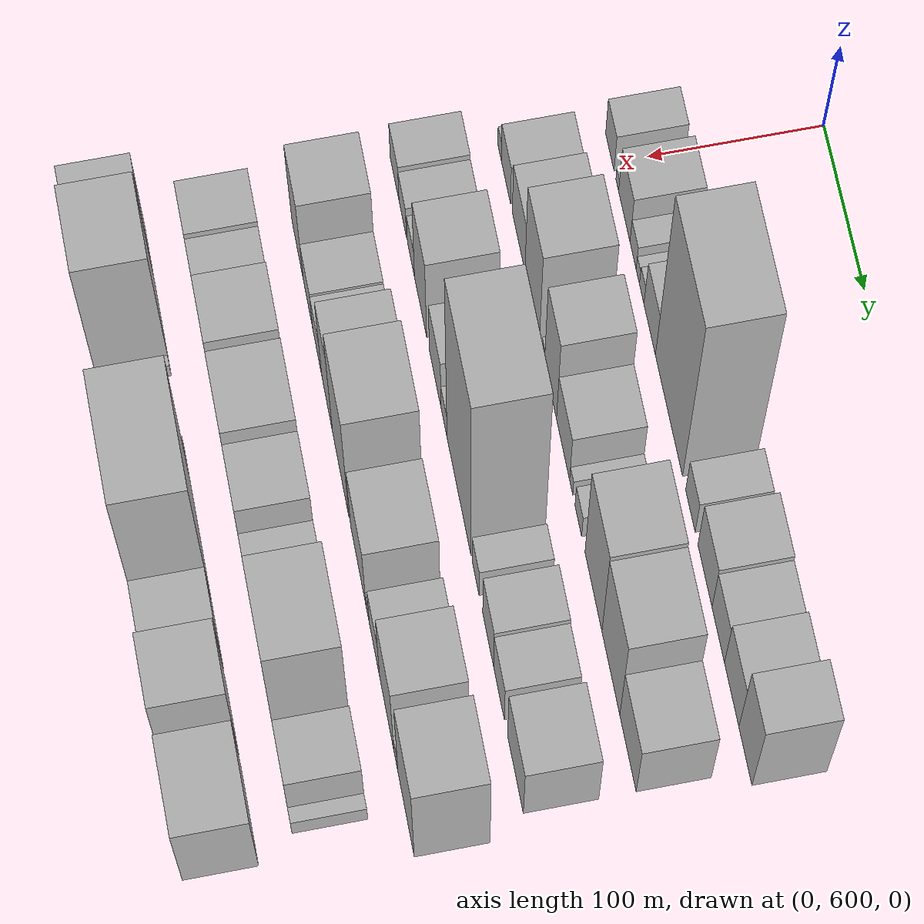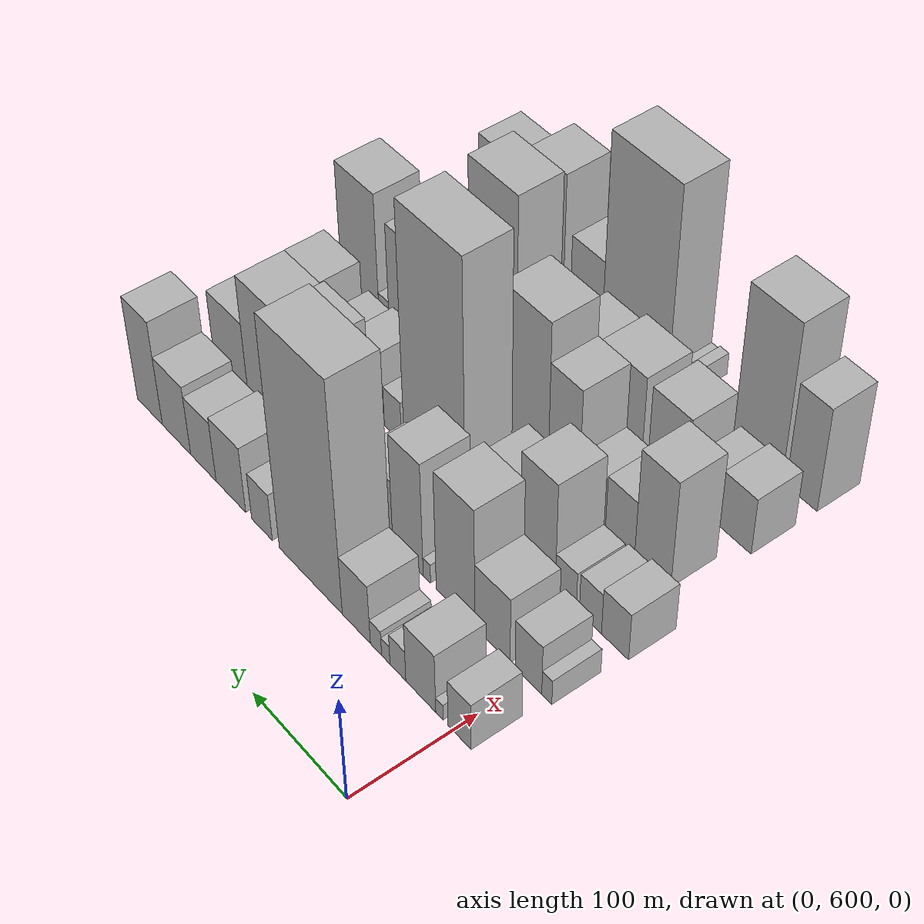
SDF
<sdf version="1.6">
 <world name="default">
  <model name="building_45">
   <static>1</static>
   <pose>100.0000 593.1495 0 0.000000 0.000000 0.000000</pose>
   <link name="link">
    <pose>0 0 22.50 0 0 0</pose>
    <collision name="collision"><geometry><box><size>40.0000 23.0561 45.0000</size></box></geometry></collision>
    <visual name="visual">
     <cast_shadows>0</cast_shadows>
     <geometry><box><size>40.0000 23.0561 45.0000</size></box></geometry>
     <material>
      <script>
       <uri>model://HANNAS_wall/materials/scripts</uri>
       <uri>model://HANNAS_wall/materials/textures</uri>
       <name>vrc/HANNAS_wall</name>
      </script>
     </material>
    </visual>
   </link>
  </model>
  <model name="building_46">
   <static>1</static>
   <pose>100.0000 613.3824 0 0.000000 0.000000 0.000000</pose>
   <link name="link">
    <pose>0 0 7.50 0 0 0</pose>
    <collision name="collision"><geometry><box><size>40.0000 7.4097 15.0000</size></box></geometry></collision>
    <visual name="visual">
     <cast_shadows>0</cast_shadows>
     <geometry><box><size>40.0000 7.4097 15.0000</size></box></geometry>
     <material>
      <script>
       <uri>model://HANNAS_wall/materials/scripts</uri>
       <uri>model://HANNAS_wall/materials/textures</uri>
       <name>vrc/HANNAS_wall</name>
      </script>
     </material>
    </visual>
   </link>
  </model>
  <model name="building_47">
   <static>1</static>
   <pose>100.0000 632.5003 0 0.000000 0.000000 0.000000</pose>
   <link name="link">
    <pose>0 0 28.50 0 0 0</pose>
    <collision name="collision"><geometry><box><size>40.0000 30.8263 57.0000</size></box></geometry></collision>
    <visual name="visual">
     <cast_shadows>0</cast_shadows>
     <geometry><box><size>40.0000 30.8263 57.0000</size></box></geometry>
     <material>
      <script>
       <uri>model://HANNAS_wall/materials/scripts</uri>
       <uri>model://HANNAS_wall/materials/textures</uri>
       <name>vrc/HANNAS_wall</name>
      </script>
     </material>
    </visual>
   </link>
  </model>
  <model name="building_48">
   <static>1</static>
   <pose>100.0000 656.2029 0 0.000000 0.000000 0.000000</pose>
   <link name="link">
    <pose>0 0 15.00 0 0 0</pose>
    <collision name="collision"><geometry><box><size>40.0000 16.5787 30.0000</size></box></geometry></collision>
    <visual name="visual">
     <cast_shadows>0</cast_shadows>
     <geometry><box><size>40.0000 16.5787 30.0000</size></box></geometry>
     <material>
      <script>
       <uri>model://HANNAS_wall/materials/scripts</uri>
       <uri>model://HANNAS_wall/materials/textures</uri>
       <name>vrc/HANNAS_wall</name>
      </script>
     </material>
    </visual>
   </link>
  </model>
  <model name="building_49">
   <static>1</static>
   <pose>100.0000 668.9546 0 0.000000 0.000000 0.000000</pose>
   <link name="link">
    <pose>0 0 9.00 0 0 0</pose>
    <collision name="collision"><geometry><box><size>40.0000 8.9249 18.0000</size></box></geometry></collision>
    <visual name="visual">
     <cast_shadows>0</cast_shadows>
     <geometry><box><size>40.0000 8.9249 18.0000</size></box></geometry>
     <material>
      <script>
       <uri>model://HANNAS_wall/materials/scripts</uri>
       <uri>model://HANNAS_wall/materials/textures</uri>
       <name>vrc/HANNAS_wall</name>
      </script>
     </material>
    </visual>
   </link>
  </model>
  <model name="building_50">
   <static>1</static>
   <pose>100.0000 679.3820 0 0.000000 0.000000 0.000000</pose>
   <link name="link">
    <pose>0 0 12.00 0 0 0</pose>
    <collision name="collision"><geometry><box><size>40.0000 11.9298 24.0000</size></box></geometry></collision>
    <visual name="visual">
     <cast_shadows>0</cast_shadows>
     <geometry><box><size>40.0000 11.9298 24.0000</size></box></geometry>
     <material>
      <script>
       <uri>model://HANNAS_wall/materials/scripts</uri>
       <uri>model://HANNAS_wall/materials/textures</uri>
       <name>vrc/HANNAS_wall</name>
      </script>
     </material>
    </visual>
   </link>
  </model>
  <model name="building_51">
   <static>1</static>
   <pose>100.0000 700.5636 0 0.000000 0.000000 0.000000</pose>
   <link name="link">
    <pose>0 0 28.50 0 0 0</pose>
    <collision name="collision"><geometry><box><size>40.0000 30.4335 57.0000</size></box></geometry></collision>
    <visual name="visual">
     <cast_shadows>0</cast_shadows>
     <geometry><box><size>40.0000 30.4335 57.0000</size></box></geometry>
     <material>
      <script>
       <uri>model://HANNAS_wall/materials/scripts</uri>
       <uri>model://HANNAS_wall/materials/textures</uri>
       <name>vrc/HANNAS_wall</name>
      </script>
     </material>
    </visual>
   </link>
  </model>
  <model name="building_52">
   <static>1</static>
   <pose>100.0000 751.2655 0 0.000000 0.000000 0.000000</pose>
   <link name="link">
    <pose>0 0 108.00 0 0 0</pose>
    <collision name="collision"><geometry><box><size>40.0000 70.9704 216.0000</size></box></geometry></collision>
    <visual name="visual">
     <cast_shadows>0</cast_shadows>
     <geometry><box><size>40.0000 70.9704 216.0000</size></box></geometry>
     <material>
      <script>
       <uri>model://HANNAS_wall/materials/scripts</uri>
       <uri>model://HANNAS_wall/materials/textures</uri>
       <name>vrc/HANNAS_wall</name>
      </script>
     </material>
    </visual>
   </link>
  </model>
  <model name="building_53">
   <static>1</static>
   <pose>100.0000 806.9127 0 0.000000 0.000000 0.000000</pose>
   <link name="link">
    <pose>0 0 22.50 0 0 0</pose>
    <collision name="collision"><geometry><box><size>40.0000 24.3240 45.0000</size></box></geometry></collision>
    <visual name="visual">
     <cast_shadows>0</cast_shadows>
     <geometry><box><size>40.0000 24.3240 45.0000</size></box></geometry>
     <material>
      <script>
       <uri>model://HANNAS_wall/materials/scripts</uri>
       <uri>model://HANNAS_wall/materials/textures</uri>
       <name>vrc/HANNAS_wall</name>
      </script>
     </material>
    </visual>
   </link>
  </model>
  <model name="building_54">
   <static>1</static>
   <pose>100.0000 843.8840 0 0.000000 0.000000 0.000000</pose>
   <link name="link">
    <pose>0 0 31.50 0 0 0</pose>
    <collision name="collision"><geometry><box><size>40.0000 35.6187 63.0000</size></box></geometry></collision>
    <visual name="visual">
     <cast_shadows>0</cast_shadows>
     <geometry><box><size>40.0000 35.6187 63.0000</size></box></geometry>
     <material>
      <script>
       <uri>model://HANNAS_wall/materials/scripts</uri>
       <uri>model://HANNAS_wall/materials/textures</uri>
       <name>vrc/HANNAS_wall</name>
      </script>
     </material>
    </visual>
   </link>
  </model>
  <model name="building_55">
   <static>1</static>
   <pose>100.0000 877.3269 0 0.000000 0.000000 0.000000</pose>
   <link name="link">
    <pose>0 0 28.50 0 0 0</pose>
    <collision name="collision"><geometry><box><size>40.0000 31.2671 57.0000</size></box></geometry></collision>
    <visual name="visual">
     <cast_shadows>0</cast_shadows>
     <geometry><box><size>40.0000 31.2671 57.0000</size></box></geometry>
     <material>
      <script>
       <uri>model://HANNAS_wall/materials/scripts</uri>
       <uri>model://HANNAS_wall/materials/textures</uri>
       <name>vrc/HANNAS_wall</name>
      </script>
     </material>
    </visual>
   </link>
  </model>
  <model name="building_56">
   <static>1</static>
   <pose>100.0000 910.8235 0 0.000000 0.000000 0.000000</pose>
   <link name="link">
    <pose>0 0 33.00 0 0 0</pose>
    <collision name="collision"><geometry><box><size>40.0000 35.7262 66.0000</size></box></geometry></collision>
    <visual name="visual">
     <cast_shadows>0</cast_shadows>
     <geometry><box><size>40.0000 35.7262 66.0000</size></box></geometry>
     <material>
      <script>
       <uri>model://HANNAS_wall/materials/scripts</uri>
       <uri>model://HANNAS_wall/materials/textures</uri>
       <name>vrc/HANNAS_wall</name>
      </script>
     </material>
    </visual>
   </link>
  </model>
  <model name="building_57">
   <static>1</static>
   <pose>100.0000 944.7487 0 0.000000 0.000000 0.000000</pose>
   <link name="link">
    <pose>0 0 49.50 0 0 0</pose>
    <collision name="collision"><geometry><box><size>40.0000 32.1241 99.0000</size></box></geometry></collision>
    <visual name="visual">
     <cast_shadows>0</cast_shadows>
     <geometry><box><size>40.0000 32.1241 99.0000</size></box></geometry>
     <material>
      <script>
       <uri>model://HANNAS_wall/materials/scripts</uri>
       <uri>model://HANNAS_wall/materials/textures</uri>
       <name>vrc/HANNAS_wall</name>
      </script>
     </material>
    </visual>
   </link>
  </model>
  <model name="building_104">
   <static>1</static>
   <pose>160.0000 581.8276 0 0.000000 0.000000 0.000000</pose>
   <link name="link">
    <pose>0 0 12.00 0 0 0</pose>
    <collision name="collision"><geometry><box><size>40.0000 9.8378 24.0000</size></box></geometry></collision>
    <visual name="visual">
     <cast_shadows>0</cast_shadows>
     <geometry><box><size>40.0000 9.8378 24.0000</size></box></geometry>
     <material>
      <script>
       <uri>model://HANNAS_wall/materials/scripts</uri>
       <uri>model://HANNAS_wall/materials/textures</uri>
       <name>vrc/HANNAS_wall</name>
      </script>
     </material>
    </visual>
   </link>
  </model>
  <model name="building_105">
   <static>1</static>
   <pose>160.0000 599.9841 0 0.000000 0.000000 0.000000</pose>
   <link name="link">
    <pose>0 0 24.00 0 0 0</pose>
    <collision name="collision"><geometry><box><size>40.0000 26.4752 48.0000</size></box></geometry></collision>
    <visual name="visual">
     <cast_shadows>0</cast_shadows>
     <geometry><box><size>40.0000 26.4752 48.0000</size></box></geometry>
     <material>
      <script>
       <uri>model://HANNAS_wall/materials/scripts</uri>
       <uri>model://HANNAS_wall/materials/textures</uri>
       <name>vrc/HANNAS_wall</name>
      </script>
     </material>
    </visual>
   </link>
  </model>
  <model name="building_106">
   <static>1</static>
   <pose>160.0000 636.1935 0 0.000000 0.000000 0.000000</pose>
   <link name="link">
    <pose>0 0 31.50 0 0 0</pose>
    <collision name="collision"><geometry><box><size>40.0000 35.9436 63.0000</size></box></geometry></collision>
    <visual name="visual">
     <cast_shadows>0</cast_shadows>
     <geometry><box><size>40.0000 35.9436 63.0000</size></box></geometry>
     <material>
      <script>
       <uri>model://HANNAS_wall/materials/scripts</uri>
       <uri>model://HANNAS_wall/materials/textures</uri>
       <name>vrc/HANNAS_wall</name>
      </script>
     </material>
    </visual>
   </link>
  </model>
  <model name="building_107">
   <static>1</static>
   <pose>160.0000 674.4853 0 0.000000 0.000000 0.000000</pose>
   <link name="link">
    <pose>0 0 57.00 0 0 0</pose>
    <collision name="collision"><geometry><box><size>40.0000 40.6400 114.0000</size></box></geometry></collision>
    <visual name="visual">
     <cast_shadows>0</cast_shadows>
     <geometry><box><size>40.0000 40.6400 114.0000</size></box></geometry>
     <material>
      <script>
       <uri>model://HANNAS_wall/materials/scripts</uri>
       <uri>model://HANNAS_wall/materials/textures</uri>
       <name>vrc/HANNAS_wall</name>
      </script>
     </material>
    </visual>
   </link>
  </model>
  <model name="building_108">
   <static>1</static>
   <pose>160.0000 704.7735 0 0.000000 0.000000 0.000000</pose>
   <link name="link">
    <pose>0 0 9.00 0 0 0</pose>
    <collision name="collision"><geometry><box><size>40.0000 7.9365 18.0000</size></box></geometry></collision>
    <visual name="visual">
     <cast_shadows>0</cast_shadows>
     <geometry><box><size>40.0000 7.9365 18.0000</size></box></geometry>
     <material>
      <script>
       <uri>model://HANNAS_wall/materials/scripts</uri>
       <uri>model://HANNAS_wall/materials/textures</uri>
       <name>vrc/HANNAS_wall</name>
      </script>
     </material>
    </visual>
   </link>
  </model>
  <model name="building_109">
   <static>1</static>
   <pose>160.0000 725.2594 0 0.000000 0.000000 0.000000</pose>
   <link name="link">
    <pose>0 0 54.00 0 0 0</pose>
    <collision name="collision"><geometry><box><size>40.0000 33.0354 108.0000</size></box></geometry></collision>
    <visual name="visual">
     <cast_shadows>0</cast_shadows>
     <geometry><box><size>40.0000 33.0354 108.0000</size></box></geometry>
     <material>
      <script>
       <uri>model://HANNAS_wall/materials/scripts</uri>
       <uri>model://HANNAS_wall/materials/textures</uri>
       <name>vrc/HANNAS_wall</name>
      </script>
     </material>
    </visual>
   </link>
  </model>
  <model name="building_110">
   <static>1</static>
   <pose>160.0000 759.6348 0 0.000000 0.000000 0.000000</pose>
   <link name="link">
    <pose>0 0 31.50 0 0 0</pose>
    <collision name="collision"><geometry><box><size>40.0000 35.7154 63.0000</size></box></geometry></collision>
    <visual name="visual">
     <cast_shadows>0</cast_shadows>
     <geometry><box><size>40.0000 35.7154 63.0000</size></box></geometry>
     <material>
      <script>
       <uri>model://HANNAS_wall/materials/scripts</uri>
       <uri>model://HANNAS_wall/materials/textures</uri>
       <name>vrc/HANNAS_wall</name>
      </script>
     </material>
    </visual>
   </link>
  </model>
  <model name="building_111">
   <static>1</static>
   <pose>160.0000 781.7776 0 0.000000 0.000000 0.000000</pose>
   <link name="link">
    <pose>0 0 10.50 0 0 0</pose>
    <collision name="collision"><geometry><box><size>40.0000 8.5702 21.0000</size></box></geometry></collision>
    <visual name="visual">
     <cast_shadows>0</cast_shadows>
     <geometry><box><size>40.0000 8.5702 21.0000</size></box></geometry>
     <material>
      <script>
       <uri>model://HANNAS_wall/materials/scripts</uri>
       <uri>model://HANNAS_wall/materials/textures</uri>
       <name>vrc/HANNAS_wall</name>
      </script>
     </material>
    </visual>
   </link>
  </model>
  <model name="building_112">
   <static>1</static>
   <pose>160.0000 800.9987 0 0.000000 0.000000 0.000000</pose>
   <link name="link">
    <pose>0 0 15.00 0 0 0</pose>
    <collision name="collision"><geometry><box><size>40.0000 17.8720 30.0000</size></box></geometry></collision>
    <visual name="visual">
     <cast_shadows>0</cast_shadows>
     <geometry><box><size>40.0000 17.8720 30.0000</size></box></geometry>
     <material>
      <script>
       <uri>model://HANNAS_wall/materials/scripts</uri>
       <uri>model://HANNAS_wall/materials/textures</uri>
       <name>vrc/HANNAS_wall</name>
      </script>
     </material>
    </visual>
   </link>
  </model>
  <model name="building_113">
   <static>1</static>
   <pose>160.0000 841.4218 0 0.000000 0.000000 0.000000</pose>
   <link name="link">
    <pose>0 0 63.00 0 0 0</pose>
    <collision name="collision"><geometry><box><size>40.0000 44.9743 126.0000</size></box></geometry></collision>
    <visual name="visual">
     <cast_shadows>0</cast_shadows>
     <geometry><box><size>40.0000 44.9743 126.0000</size></box></geometry>
     <material>
      <script>
       <uri>model://HANNAS_wall/materials/scripts</uri>
       <uri>model://HANNAS_wall/materials/textures</uri>
       <name>vrc/HANNAS_wall</name>
      </script>
     </material>
    </visual>
   </link>
  </model>
  <model name="building_114">
   <static>1</static>
   <pose>160.0000 887.2286 0 0.000000 0.000000 0.000000</pose>
   <link name="link">
    <pose>0 0 60.00 0 0 0</pose>
    <collision name="collision"><geometry><box><size>40.0000 46.6394 120.0000</size></box></geometry></collision>
    <visual name="visual">
     <cast_shadows>0</cast_shadows>
     <geometry><box><size>40.0000 46.6394 120.0000</size></box></geometry>
     <material>
      <script>
       <uri>model://HANNAS_wall/materials/scripts</uri>
       <uri>model://HANNAS_wall/materials/textures</uri>
       <name>vrc/HANNAS_wall</name>
      </script>
     </material>
    </visual>
   </link>
  </model>
  <model name="building_115">
   <static>1</static>
   <pose>160.0000 931.6142 0 0.000000 0.000000 0.000000</pose>
   <link name="link">
    <pose>0 0 37.50 0 0 0</pose>
    <collision name="collision"><geometry><box><size>40.0000 42.1318 75.0000</size></box></geometry></collision>
    <visual name="visual">
     <cast_shadows>0</cast_shadows>
     <geometry><box><size>40.0000 42.1318 75.0000</size></box></geometry>
     <material>
      <script>
       <uri>model://HANNAS_wall/materials/scripts</uri>
       <uri>model://HANNAS_wall/materials/textures</uri>
       <name>vrc/HANNAS_wall</name>
      </script>
     </material>
    </visual>
   </link>
  </model>
  <model name="building_160">
   <static>1</static>
   <pose>220.0000 586.6450 0 0.000000 0.000000 0.000000</pose>
   <link name="link">
    <pose>0 0 22.50 0 0 0</pose>
    <collision name="collision"><geometry><box><size>40.0000 26.4639 45.0000</size></box></geometry></collision>
    <visual name="visual">
     <cast_shadows>0</cast_shadows>
     <geometry><box><size>40.0000 26.4639 45.0000</size></box></geometry>
     <material>
      <script>
       <uri>model://HANNAS_wall/materials/scripts</uri>
       <uri>model://HANNAS_wall/materials/textures</uri>
       <name>vrc/HANNAS_wall</name>
      </script>
     </material>
    </visual>
   </link>
  </model>
  <model name="building_161">
   <static>1</static>
   <pose>220.0000 610.8806 0 0.000000 0.000000 0.000000</pose>
   <link name="link">
    <pose>0 0 19.50 0 0 0</pose>
    <collision name="collision"><geometry><box><size>40.0000 22.0073 39.0000</size></box></geometry></collision>
    <visual name="visual">
     <cast_shadows>0</cast_shadows>
     <geometry><box><size>40.0000 22.0073 39.0000</size></box></geometry>
     <material>
      <script>
       <uri>model://HANNAS_wall/materials/scripts</uri>
       <uri>model://HANNAS_wall/materials/textures</uri>
       <name>vrc/HANNAS_wall</name>
      </script>
     </material>
    </visual>
   </link>
  </model>
  <model name="building_162">
   <static>1</static>
   <pose>220.0000 635.4902 0 0.000000 0.000000 0.000000</pose>
   <link name="link">
    <pose>0 0 18.00 0 0 0</pose>
    <collision name="collision"><geometry><box><size>40.0000 21.2120 36.0000</size></box></geometry></collision>
    <visual name="visual">
     <cast_shadows>0</cast_shadows>
     <geometry><box><size>40.0000 21.2120 36.0000</size></box></geometry>
     <material>
      <script>
       <uri>model://HANNAS_wall/materials/scripts</uri>
       <uri>model://HANNAS_wall/materials/textures</uri>
       <name>vrc/HANNAS_wall</name>
      </script>
     </material>
    </visual>
   </link>
  </model>
  <model name="building_163">
   <static>1</static>
   <pose>220.0000 664.1175 0 0.000000 0.000000 0.000000</pose>
   <link name="link">
    <pose>0 0 51.00 0 0 0</pose>
    <collision name="collision"><geometry><box><size>40.0000 36.0426 102.0000</size></box></geometry></collision>
    <visual name="visual">
     <cast_shadows>0</cast_shadows>
     <geometry><box><size>40.0000 36.0426 102.0000</size></box></geometry>
     <material>
      <script>
       <uri>model://HANNAS_wall/materials/scripts</uri>
       <uri>model://HANNAS_wall/materials/textures</uri>
       <name>vrc/HANNAS_wall</name>
      </script>
     </material>
    </visual>
   </link>
  </model>
  <model name="building_164">
   <static>1</static>
   <pose>220.0000 707.0521 0 0.000000 0.000000 0.000000</pose>
   <link name="link">
    <pose>0 0 33.00 0 0 0</pose>
    <collision name="collision"><geometry><box><size>40.0000 33.8267 66.0000</size></box></geometry></collision>
    <visual name="visual">
     <cast_shadows>0</cast_shadows>
     <geometry><box><size>40.0000 33.8267 66.0000</size></box></geometry>
     <material>
      <script>
       <uri>model://HANNAS_wall/materials/scripts</uri>
       <uri>model://HANNAS_wall/materials/textures</uri>
       <name>vrc/HANNAS_wall</name>
      </script>
     </material>
    </visual>
   </link>
  </model>
  <model name="building_165">
   <static>1</static>
   <pose>220.0000 732.4804 0 0.000000 0.000000 0.000000</pose>
   <link name="link">
    <pose>0 0 16.50 0 0 0</pose>
    <collision name="collision"><geometry><box><size>40.0000 17.0299 33.0000</size></box></geometry></collision>
    <visual name="visual">
     <cast_shadows>0</cast_shadows>
     <geometry><box><size>40.0000 17.0299 33.0000</size></box></geometry>
     <material>
      <script>
       <uri>model://HANNAS_wall/materials/scripts</uri>
       <uri>model://HANNAS_wall/materials/textures</uri>
       <name>vrc/HANNAS_wall</name>
      </script>
     </material>
    </visual>
   </link>
  </model>
  <model name="building_166">
   <static>1</static>
   <pose>220.0000 775.0628 0 0.000000 0.000000 0.000000</pose>
   <link name="link">
    <pose>0 0 112.50 0 0 0</pose>
    <collision name="collision"><geometry><box><size>40.0000 68.1348 225.0000</size></box></geometry></collision>
    <visual name="visual">
     <cast_shadows>0</cast_shadows>
     <geometry><box><size>40.0000 68.1348 225.0000</size></box></geometry>
     <material>
      <script>
       <uri>model://HANNAS_wall/materials/scripts</uri>
       <uri>model://HANNAS_wall/materials/textures</uri>
       <name>vrc/HANNAS_wall</name>
      </script>
     </material>
    </visual>
   </link>
  </model>
  <model name="building_167">
   <static>1</static>
   <pose>220.0000 822.0262 0 0.000000 0.000000 0.000000</pose>
   <link name="link">
    <pose>0 0 19.50 0 0 0</pose>
    <collision name="collision"><geometry><box><size>40.0000 19.7921 39.0000</size></box></geometry></collision>
    <visual name="visual">
     <cast_shadows>0</cast_shadows>
     <geometry><box><size>40.0000 19.7921 39.0000</size></box></geometry>
     <material>
      <script>
       <uri>model://HANNAS_wall/materials/scripts</uri>
       <uri>model://HANNAS_wall/materials/textures</uri>
       <name>vrc/HANNAS_wall</name>
      </script>
     </material>
    </visual>
   </link>
  </model>
  <model name="building_168">
   <static>1</static>
   <pose>220.0000 857.0688 0 0.000000 0.000000 0.000000</pose>
   <link name="link">
    <pose>0 0 30.00 0 0 0</pose>
    <collision name="collision"><geometry><box><size>40.0000 30.2931 60.0000</size></box></geometry></collision>
    <visual name="visual">
     <cast_shadows>0</cast_shadows>
     <geometry><box><size>40.0000 30.2931 60.0000</size></box></geometry>
     <material>
      <script>
       <uri>model://HANNAS_wall/materials/scripts</uri>
       <uri>model://HANNAS_wall/materials/textures</uri>
       <name>vrc/HANNAS_wall</name>
      </script>
     </material>
    </visual>
   </link>
  </model>
  <model name="building_169">
   <static>1</static>
   <pose>220.0000 886.8657 0 0.000000 0.000000 0.000000</pose>
   <link name="link">
    <pose>0 0 27.00 0 0 0</pose>
    <collision name="collision"><geometry><box><size>40.0000 29.3008 54.0000</size></box></geometry></collision>
    <visual name="visual">
     <cast_shadows>0</cast_shadows>
     <geometry><box><size>40.0000 29.3008 54.0000</size></box></geometry>
     <material>
      <script>
       <uri>model://HANNAS_wall/materials/scripts</uri>
       <uri>model://HANNAS_wall/materials/textures</uri>
       <name>vrc/HANNAS_wall</name>
      </script>
     </material>
    </visual>
   </link>
  </model>
  <model name="building_170">
   <static>1</static>
   <pose>220.0000 931.6974 0 0.000000 0.000000 0.000000</pose>
   <link name="link">
    <pose>0 0 37.50 0 0 0</pose>
    <collision name="collision"><geometry><box><size>40.0000 42.3626 75.0000</size></box></geometry></collision>
    <visual name="visual">
     <cast_shadows>0</cast_shadows>
     <geometry><box><size>40.0000 42.3626 75.0000</size></box></geometry>
     <material>
      <script>
       <uri>model://HANNAS_wall/materials/scripts</uri>
       <uri>model://HANNAS_wall/materials/textures</uri>
       <name>vrc/HANNAS_wall</name>
      </script>
     </material>
    </visual>
   </link>
  </model>
  <model name="building_211">
   <static>1</static>
   <pose>280.0000 618.7101 0 0.000000 0.000000 0.000000</pose>
   <link name="link">
    <pose>0 0 51.00 0 0 0</pose>
    <collision name="collision"><geometry><box><size>40.0000 35.7770 102.0000</size></box></geometry></collision>
    <visual name="visual">
     <cast_shadows>0</cast_shadows>
     <geometry><box><size>40.0000 35.7770 102.0000</size></box></geometry>
     <material>
      <script>
       <uri>model://HANNAS_wall/materials/scripts</uri>
       <uri>model://HANNAS_wall/materials/textures</uri>
       <name>vrc/HANNAS_wall</name>
      </script>
     </material>
    </visual>
   </link>
  </model>
  <model name="building_212">
   <static>1</static>
   <pose>280.0000 651.3871 0 0.000000 0.000000 0.000000</pose>
   <link name="link">
    <pose>0 0 25.50 0 0 0</pose>
    <collision name="collision"><geometry><box><size>40.0000 29.5771 51.0000</size></box></geometry></collision>
    <visual name="visual">
     <cast_shadows>0</cast_shadows>
     <geometry><box><size>40.0000 29.5771 51.0000</size></box></geometry>
     <material>
      <script>
       <uri>model://HANNAS_wall/materials/scripts</uri>
       <uri>model://HANNAS_wall/materials/textures</uri>
       <name>vrc/HANNAS_wall</name>
      </script>
     </material>
    </visual>
   </link>
  </model>
  <model name="building_213">
   <static>1</static>
   <pose>280.0000 680.0208 0 0.000000 0.000000 0.000000</pose>
   <link name="link">
    <pose>0 0 24.00 0 0 0</pose>
    <collision name="collision"><geometry><box><size>40.0000 27.6902 48.0000</size></box></geometry></collision>
    <visual name="visual">
     <cast_shadows>0</cast_shadows>
     <geometry><box><size>40.0000 27.6902 48.0000</size></box></geometry>
     <material>
      <script>
       <uri>model://HANNAS_wall/materials/scripts</uri>
       <uri>model://HANNAS_wall/materials/textures</uri>
       <name>vrc/HANNAS_wall</name>
      </script>
     </material>
    </visual>
   </link>
  </model>
  <model name="building_214">
   <static>1</static>
   <pose>280.0000 710.1122 0 0.000000 0.000000 0.000000</pose>
   <link name="link">
    <pose>0 0 54.00 0 0 0</pose>
    <collision name="collision"><geometry><box><size>40.0000 32.4928 108.0000</size></box></geometry></collision>
    <visual name="visual">
     <cast_shadows>0</cast_shadows>
     <geometry><box><size>40.0000 32.4928 108.0000</size></box></geometry>
     <material>
      <script>
       <uri>model://HANNAS_wall/materials/scripts</uri>
       <uri>model://HANNAS_wall/materials/textures</uri>
       <name>vrc/HANNAS_wall</name>
      </script>
     </material>
    </visual>
   </link>
  </model>
  <model name="building_215">
   <static>1</static>
   <pose>280.0000 751.1463 0 0.000000 0.000000 0.000000</pose>
   <link name="link">
    <pose>0 0 72.00 0 0 0</pose>
    <collision name="collision"><geometry><box><size>40.0000 49.5754 144.0000</size></box></geometry></collision>
    <visual name="visual">
     <cast_shadows>0</cast_shadows>
     <geometry><box><size>40.0000 49.5754 144.0000</size></box></geometry>
     <material>
      <script>
       <uri>model://HANNAS_wall/materials/scripts</uri>
       <uri>model://HANNAS_wall/materials/textures</uri>
       <name>vrc/HANNAS_wall</name>
      </script>
     </material>
    </visual>
   </link>
  </model>
  <model name="building_216">
   <static>1</static>
   <pose>280.0000 803.6916 0 0.000000 0.000000 0.000000</pose>
   <link name="link">
    <pose>0 0 43.50 0 0 0</pose>
    <collision name="collision"><geometry><box><size>40.0000 45.5151 87.0000</size></box></geometry></collision>
    <visual name="visual">
     <cast_shadows>0</cast_shadows>
     <geometry><box><size>40.0000 45.5151 87.0000</size></box></geometry>
     <material>
      <script>
       <uri>model://HANNAS_wall/materials/scripts</uri>
       <uri>model://HANNAS_wall/materials/textures</uri>
       <name>vrc/HANNAS_wall</name>
      </script>
     </material>
    </visual>
   </link>
  </model>
  <model name="building_217">
   <static>1</static>
   <pose>280.0000 831.4680 0 0.000000 0.000000 0.000000</pose>
   <link name="link">
    <pose>0 0 12.00 0 0 0</pose>
    <collision name="collision"><geometry><box><size>40.0000 10.0376 24.0000</size></box></geometry></collision>
    <visual name="visual">
     <cast_shadows>0</cast_shadows>
     <geometry><box><size>40.0000 10.0376 24.0000</size></box></geometry>
     <material>
      <script>
       <uri>model://HANNAS_wall/materials/scripts</uri>
       <uri>model://HANNAS_wall/materials/textures</uri>
       <name>vrc/HANNAS_wall</name>
      </script>
     </material>
    </visual>
   </link>
  </model>
  <model name="building_218">
   <static>1</static>
   <pose>280.0000 851.3828 0 0.000000 0.000000 0.000000</pose>
   <link name="link">
    <pose>0 0 28.50 0 0 0</pose>
    <collision name="collision"><geometry><box><size>40.0000 29.7920 57.0000</size></box></geometry></collision>
    <visual name="visual">
     <cast_shadows>0</cast_shadows>
     <geometry><box><size>40.0000 29.7920 57.0000</size></box></geometry>
     <material>
      <script>
       <uri>model://HANNAS_wall/materials/scripts</uri>
       <uri>model://HANNAS_wall/materials/textures</uri>
       <name>vrc/HANNAS_wall</name>
      </script>
     </material>
    </visual>
   </link>
  </model>
  <model name="building_219">
   <static>1</static>
   <pose>280.0000 886.4820 0 0.000000 0.000000 0.000000</pose>
   <link name="link">
    <pose>0 0 51.00 0 0 0</pose>
    <collision name="collision"><geometry><box><size>40.0000 40.4063 102.0000</size></box></geometry></collision>
    <visual name="visual">
     <cast_shadows>0</cast_shadows>
     <geometry><box><size>40.0000 40.4063 102.0000</size></box></geometry>
     <material>
      <script>
       <uri>model://HANNAS_wall/materials/scripts</uri>
       <uri>model://HANNAS_wall/materials/textures</uri>
       <name>vrc/HANNAS_wall</name>
      </script>
     </material>
    </visual>
   </link>
  </model>
  <model name="building_220">
   <static>1</static>
   <pose>280.0000 912.8430 0 0.000000 0.000000 0.000000</pose>
   <link name="link">
    <pose>0 0 13.50 0 0 0</pose>
    <collision name="collision"><geometry><box><size>40.0000 12.3158 27.0000</size></box></geometry></collision>
    <visual name="visual">
     <cast_shadows>0</cast_shadows>
     <geometry><box><size>40.0000 12.3158 27.0000</size></box></geometry>
     <material>
      <script>
       <uri>model://HANNAS_wall/materials/scripts</uri>
       <uri>model://HANNAS_wall/materials/textures</uri>
       <name>vrc/HANNAS_wall</name>
      </script>
     </material>
    </visual>
   </link>
  </model>
  <model name="building_221">
   <static>1</static>
   <pose>280.0000 941.9724 0 0.000000 0.000000 0.000000</pose>
   <link name="link">
    <pose>0 0 60.00 0 0 0</pose>
    <collision name="collision"><geometry><box><size>40.0000 45.9430 120.0000</size></box></geometry></collision>
    <visual name="visual">
     <cast_shadows>0</cast_shadows>
     <geometry><box><size>40.0000 45.9430 120.0000</size></box></geometry>
     <material>
      <script>
       <uri>model://HANNAS_wall/materials/scripts</uri>
       <uri>model://HANNAS_wall/materials/textures</uri>
       <name>vrc/HANNAS_wall</name>
      </script>
     </material>
    </visual>
   </link>
  </model>
  <model name="building_268">
   <static>1</static>
   <pose>340.0000 604.7084 0 0.000000 0.000000 0.000000</pose>
   <link name="link">
    <pose>0 0 27.00 0 0 0</pose>
    <collision name="collision"><geometry><box><size>40.0000 31.7226 54.0000</size></box></geometry></collision>
    <visual name="visual">
     <cast_shadows>0</cast_shadows>
     <geometry><box><size>40.0000 31.7226 54.0000</size></box></geometry>
     <material>
      <script>
       <uri>model://HANNAS_wall/materials/scripts</uri>
       <uri>model://HANNAS_wall/materials/textures</uri>
       <name>vrc/HANNAS_wall</name>
      </script>
     </material>
    </visual>
   </link>
  </model>
  <model name="building_269">
   <static>1</static>
   <pose>340.0000 633.8607 0 0.000000 0.000000 0.000000</pose>
   <link name="link">
    <pose>0 0 24.00 0 0 0</pose>
    <collision name="collision"><geometry><box><size>40.0000 26.5820 48.0000</size></box></geometry></collision>
    <visual name="visual">
     <cast_shadows>0</cast_shadows>
     <geometry><box><size>40.0000 26.5820 48.0000</size></box></geometry>
     <material>
      <script>
       <uri>model://HANNAS_wall/materials/scripts</uri>
       <uri>model://HANNAS_wall/materials/textures</uri>
       <name>vrc/HANNAS_wall</name>
      </script>
     </material>
    </visual>
   </link>
  </model>
  <model name="building_270">
   <static>1</static>
   <pose>340.0000 672.6323 0 0.000000 0.000000 0.000000</pose>
   <link name="link">
    <pose>0 0 37.50 0 0 0</pose>
    <collision name="collision"><geometry><box><size>40.0000 38.9611 75.0000</size></box></geometry></collision>
    <visual name="visual">
     <cast_shadows>0</cast_shadows>
     <geometry><box><size>40.0000 38.9611 75.0000</size></box></geometry>
     <material>
      <script>
       <uri>model://HANNAS_wall/materials/scripts</uri>
       <uri>model://HANNAS_wall/materials/textures</uri>
       <name>vrc/HANNAS_wall</name>
      </script>
     </material>
    </visual>
   </link>
  </model>
  <model name="building_271">
   <static>1</static>
   <pose>340.0000 721.2803 0 0.000000 0.000000 0.000000</pose>
   <link name="link">
    <pose>0 0 39.00 0 0 0</pose>
    <collision name="collision"><geometry><box><size>40.0000 46.3348 78.0000</size></box></geometry></collision>
    <visual name="visual">
     <cast_shadows>0</cast_shadows>
     <geometry><box><size>40.0000 46.3348 78.0000</size></box></geometry>
     <material>
      <script>
       <uri>model://HANNAS_wall/materials/scripts</uri>
       <uri>model://HANNAS_wall/materials/textures</uri>
       <name>vrc/HANNAS_wall</name>
      </script>
     </material>
    </visual>
   </link>
  </model>
  <model name="building_272">
   <static>1</static>
   <pose>340.0000 766.1467 0 0.000000 0.000000 0.000000</pose>
   <link name="link">
    <pose>0 0 34.50 0 0 0</pose>
    <collision name="collision"><geometry><box><size>40.0000 37.3980 69.0000</size></box></geometry></collision>
    <visual name="visual">
     <cast_shadows>0</cast_shadows>
     <geometry><box><size>40.0000 37.3980 69.0000</size></box></geometry>
     <material>
      <script>
       <uri>model://HANNAS_wall/materials/scripts</uri>
       <uri>model://HANNAS_wall/materials/textures</uri>
       <name>vrc/HANNAS_wall</name>
      </script>
     </material>
    </visual>
   </link>
  </model>
  <model name="building_273">
   <static>1</static>
   <pose>340.0000 793.5638 0 0.000000 0.000000 0.000000</pose>
   <link name="link">
    <pose>0 0 16.50 0 0 0</pose>
    <collision name="collision"><geometry><box><size>40.0000 17.4362 33.0000</size></box></geometry></collision>
    <visual name="visual">
     <cast_shadows>0</cast_shadows>
     <geometry><box><size>40.0000 17.4362 33.0000</size></box></geometry>
     <material>
      <script>
       <uri>model://HANNAS_wall/materials/scripts</uri>
       <uri>model://HANNAS_wall/materials/textures</uri>
       <name>vrc/HANNAS_wall</name>
      </script>
     </material>
    </visual>
   </link>
  </model>
  <model name="building_274">
   <static>1</static>
   <pose>340.0000 813.7919 0 0.000000 0.000000 0.000000</pose>
   <link name="link">
    <pose>0 0 22.50 0 0 0</pose>
    <collision name="collision"><geometry><box><size>40.0000 23.0200 45.0000</size></box></geometry></collision>
    <visual name="visual">
     <cast_shadows>0</cast_shadows>
     <geometry><box><size>40.0000 23.0200 45.0000</size></box></geometry>
     <material>
      <script>
       <uri>model://HANNAS_wall/materials/scripts</uri>
       <uri>model://HANNAS_wall/materials/textures</uri>
       <name>vrc/HANNAS_wall</name>
      </script>
     </material>
    </visual>
   </link>
  </model>
  <model name="building_275">
   <static>1</static>
   <pose>340.0000 861.8853 0 0.000000 0.000000 0.000000</pose>
   <link name="link">
    <pose>0 0 72.00 0 0 0</pose>
    <collision name="collision"><geometry><box><size>40.0000 55.1668 144.0000</size></box></geometry></collision>
    <visual name="visual">
     <cast_shadows>0</cast_shadows>
     <geometry><box><size>40.0000 55.1668 144.0000</size></box></geometry>
     <material>
      <script>
       <uri>model://HANNAS_wall/materials/scripts</uri>
       <uri>model://HANNAS_wall/materials/textures</uri>
       <name>vrc/HANNAS_wall</name>
      </script>
     </material>
    </visual>
   </link>
  </model>
  <model name="building_276">
   <static>1</static>
   <pose>340.0000 914.7482 0 0.000000 0.000000 0.000000</pose>
   <link name="link">
    <pose>0 0 33.00 0 0 0</pose>
    <collision name="collision"><geometry><box><size>40.0000 34.5590 66.0000</size></box></geometry></collision>
    <visual name="visual">
     <cast_shadows>0</cast_shadows>
     <geometry><box><size>40.0000 34.5590 66.0000</size></box></geometry>
     <material>
      <script>
       <uri>model://HANNAS_wall/materials/scripts</uri>
       <uri>model://HANNAS_wall/materials/textures</uri>
       <name>vrc/HANNAS_wall</name>
      </script>
     </material>
    </visual>
   </link>
  </model>
  <model name="building_277">
   <static>1</static>
   <pose>340.0000 936.3288 0 0.000000 0.000000 0.000000</pose>
   <link name="link">
    <pose>0 0 10.50 0 0 0</pose>
    <collision name="collision"><geometry><box><size>40.0000 8.6022 21.0000</size></box></geometry></collision>
    <visual name="visual">
     <cast_shadows>0</cast_shadows>
     <geometry><box><size>40.0000 8.6022 21.0000</size></box></geometry>
     <material>
      <script>
       <uri>model://HANNAS_wall/materials/scripts</uri>
       <uri>model://HANNAS_wall/materials/textures</uri>
       <name>vrc/HANNAS_wall</name>
      </script>
     </material>
    </visual>
   </link>
  </model>
  <model name="building_322">
   <static>1</static>
   <pose>400.0000 603.6137 0 0.000000 0.000000 0.000000</pose>
   <link name="link">
    <pose>0 0 49.50 0 0 0</pose>
    <collision name="collision"><geometry><box><size>40.0000 30.0192 99.0000</size></box></geometry></collision>
    <visual name="visual">
     <cast_shadows>0</cast_shadows>
     <geometry><box><size>40.0000 30.0192 99.0000</size></box></geometry>
     <material>
      <script>
       <uri>model://HANNAS_wall/materials/scripts</uri>
       <uri>model://HANNAS_wall/materials/textures</uri>
       <name>vrc/HANNAS_wall</name>
      </script>
     </material>
    </visual>
   </link>
  </model>
  <model name="building_323">
   <static>1</static>
   <pose>400.0000 647.0864 0 0.000000 0.000000 0.000000</pose>
   <link name="link">
    <pose>0 0 75.00 0 0 0</pose>
    <collision name="collision"><geometry><box><size>40.0000 48.9261 150.0000</size></box></geometry></collision>
    <visual name="visual">
     <cast_shadows>0</cast_shadows>
     <geometry><box><size>40.0000 48.9261 150.0000</size></box></geometry>
     <material>
      <script>
       <uri>model://HANNAS_wall/materials/scripts</uri>
       <uri>model://HANNAS_wall/materials/textures</uri>
       <name>vrc/HANNAS_wall</name>
      </script>
     </material>
    </visual>
   </link>
  </model>
  <model name="building_324">
   <static>1</static>
   <pose>400.0000 674.7337 0 0.000000 0.000000 0.000000</pose>
   <link name="link">
    <pose>0 0 7.50 0 0 0</pose>
    <collision name="collision"><geometry><box><size>40.0000 6.3684 15.0000</size></box></geometry></collision>
    <visual name="visual">
     <cast_shadows>0</cast_shadows>
     <geometry><box><size>40.0000 6.3684 15.0000</size></box></geometry>
     <material>
      <script>
       <uri>model://HANNAS_wall/materials/scripts</uri>
       <uri>model://HANNAS_wall/materials/textures</uri>
       <name>vrc/HANNAS_wall</name>
      </script>
     </material>
    </visual>
   </link>
  </model>
  <model name="building_325">
   <static>1</static>
   <pose>400.0000 725.7243 0 0.000000 0.000000 0.000000</pose>
   <link name="link">
    <pose>0 0 10.50 0 0 0</pose>
    <collision name="collision"><geometry><box><size>40.0000 9.2043 21.0000</size></box></geometry></collision>
    <visual name="visual">
     <cast_shadows>0</cast_shadows>
     <geometry><box><size>40.0000 9.2043 21.0000</size></box></geometry>
     <material>
      <script>
       <uri>model://HANNAS_wall/materials/scripts</uri>
       <uri>model://HANNAS_wall/materials/textures</uri>
       <name>vrc/HANNAS_wall</name>
      </script>
     </material>
    </visual>
   </link>
  </model>
  <model name="building_326">
   <static>1</static>
   <pose>400.0000 734.6278 0 0.000000 0.000000 0.000000</pose>
   <link name="link">
    <pose>0 0 9.00 0 0 0</pose>
    <collision name="collision"><geometry><box><size>40.0000 8.6028 18.0000</size></box></geometry></collision>
    <visual name="visual">
     <cast_shadows>0</cast_shadows>
     <geometry><box><size>40.0000 8.6028 18.0000</size></box></geometry>
     <material>
      <script>
       <uri>model://HANNAS_wall/materials/scripts</uri>
       <uri>model://HANNAS_wall/materials/textures</uri>
       <name>vrc/HANNAS_wall</name>
      </script>
     </material>
    </visual>
   </link>
  </model>
  <model name="building_327">
   <static>1</static>
   <pose>400.0000 774.6906 0 0.000000 0.000000 0.000000</pose>
   <link name="link">
    <pose>0 0 93.00 0 0 0</pose>
    <collision name="collision"><geometry><box><size>40.0000 71.5227 186.0000</size></box></geometry></collision>
    <visual name="visual">
     <cast_shadows>0</cast_shadows>
     <geometry><box><size>40.0000 71.5227 186.0000</size></box></geometry>
     <material>
      <script>
       <uri>model://HANNAS_wall/materials/scripts</uri>
       <uri>model://HANNAS_wall/materials/textures</uri>
       <name>vrc/HANNAS_wall</name>
      </script>
     </material>
    </visual>
   </link>
  </model>
  <model name="building_328">
   <static>1</static>
   <pose>400.0000 828.4790 0 0.000000 0.000000 0.000000</pose>
   <link name="link">
    <pose>0 0 33.00 0 0 0</pose>
    <collision name="collision"><geometry><box><size>40.0000 36.0543 66.0000</size></box></geometry></collision>
    <visual name="visual">
     <cast_shadows>0</cast_shadows>
     <geometry><box><size>40.0000 36.0543 66.0000</size></box></geometry>
     <material>
      <script>
       <uri>model://HANNAS_wall/materials/scripts</uri>
       <uri>model://HANNAS_wall/materials/textures</uri>
       <name>vrc/HANNAS_wall</name>
      </script>
     </material>
    </visual>
   </link>
  </model>
  <model name="building_329">
   <static>1</static>
   <pose>400.0000 874.4681 0 0.000000 0.000000 0.000000</pose>
   <link name="link">
    <pose>0 0 58.50 0 0 0</pose>
    <collision name="collision"><geometry><box><size>40.0000 39.9239 117.0000</size></box></geometry></collision>
    <visual name="visual">
     <cast_shadows>0</cast_shadows>
     <geometry><box><size>40.0000 39.9239 117.0000</size></box></geometry>
     <material>
      <script>
       <uri>model://HANNAS_wall/materials/scripts</uri>
       <uri>model://HANNAS_wall/materials/textures</uri>
       <name>vrc/HANNAS_wall</name>
      </script>
     </material>
    </visual>
   </link>
  </model>
  <model name="building_330">
   <static>1</static>
   <pose>400.0000 927.3983 0 0.000000 0.000000 0.000000</pose>
   <link name="link">
    <pose>0 0 45.00 0 0 0</pose>
    <collision name="collision"><geometry><box><size>40.0000 53.9366 90.0000</size></box></geometry></collision>
    <visual name="visual">
     <cast_shadows>0</cast_shadows>
     <geometry><box><size>40.0000 53.9366 90.0000</size></box></geometry>
     <material>
      <script>
       <uri>model://HANNAS_wall/materials/scripts</uri>
       <uri>model://HANNAS_wall/materials/textures</uri>
       <name>vrc/HANNAS_wall</name>
      </script>
     </material>
    </visual>
   </link>
  </model>
 </world>
</sdf>
